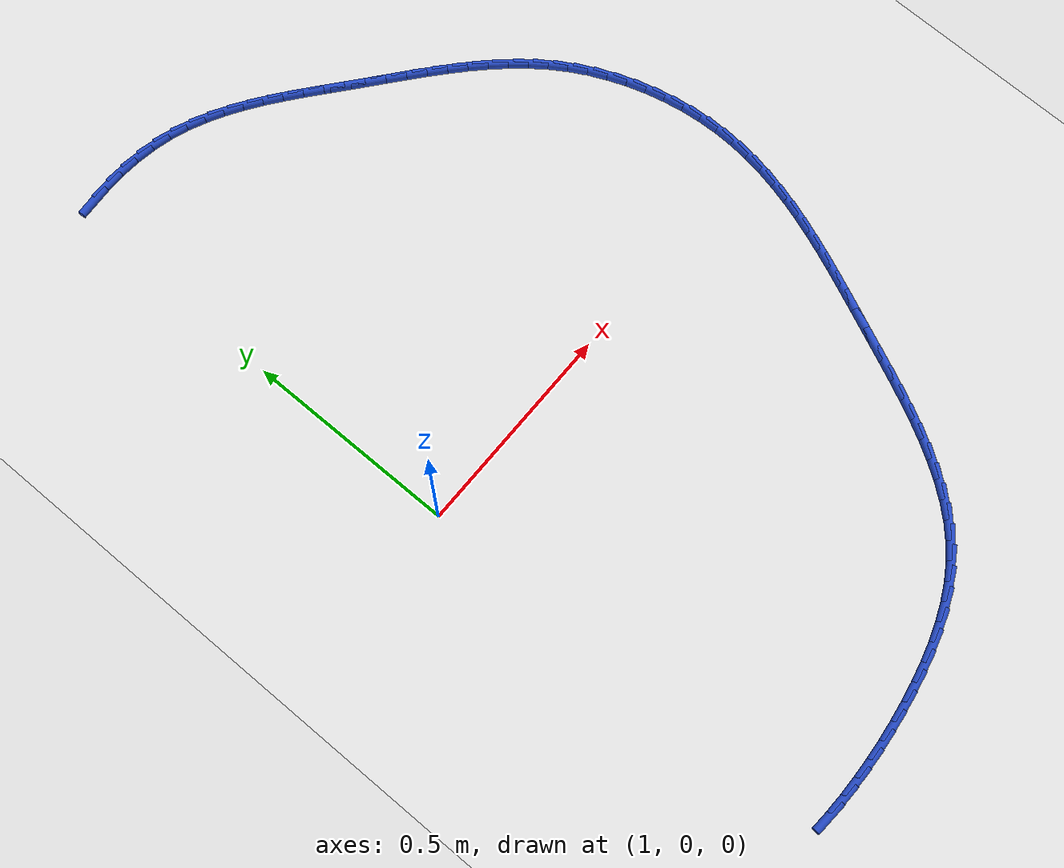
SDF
<sdf version="1.6">
 <world name="default">
  <model name="ground_plane">
   <static>1</static>
   <link name="link">
    <collision name="collision">
     <geometry><plane><normal>0 0 1</normal><size>100 100</size></plane></geometry>
     <surface><friction><ode><mu>100</mu><mu2>50</mu2></ode></friction></surface>
    </collision>
    <visual name="visual">
     <cast_shadows>0</cast_shadows>
     <geometry><plane><normal>0 0 1</normal><size>100 100</size></plane></geometry>
     <material>
      <script><uri>file://media/materials/scripts/gazebo.material</uri><name>Gazebo/WhiteGlow</name></script>
     </material>
    </visual>
   </link>
  </model>
  <model name="line">
   <link name="link_35">
    <pose>1.0471756109382253 1.0462432174974072 0.01 0 1.57 0.0472730541252099</pose>
    <collision name="collision">
     <geometry><cylinder><radius>0.01</radius><length>0.08</length></cylinder></geometry>
    </collision>
    <visual name="visual">
     <material>
      <script><name>Gazebo/Blue</name><uri>file://media/materials/scripts/gazebo.material</uri></script>
     </material>
     <geometry><cylinder><radius>0.01</radius><length>0.08</length></cylinder></geometry>
    </visual>
   </link>
   <link name="link_36">
    <pose>1.0937049745823109 1.048444442590838 0.01 0 1.57 -0.018443642220635454</pose>
    <collision name="collision">
     <geometry><cylinder><radius>0.01</radius><length>0.08</length></cylinder></geometry>
    </collision>
    <visual name="visual">
     <material>
      <script><name>Gazebo/Blue</name><uri>file://media/materials/scripts/gazebo.material</uri></script>
     </material>
     <geometry><cylinder><radius>0.01</radius><length>0.08</length></cylinder></geometry>
    </visual>
   </link>
   <link name="link_37">
    <pose>1.1398210970305143 1.0475937968714792 0.01 0 1.57 -0.09071738016088018</pose>
    <collision name="collision">
     <geometry><cylinder><radius>0.01</radius><length>0.08</length></cylinder></geometry>
    </collision>
    <visual name="visual">
     <material>
      <script><name>Gazebo/Blue</name><uri>file://media/materials/scripts/gazebo.material</uri></script>
     </material>
     <geometry><cylinder><radius>0.01</radius><length>0.08</length></cylinder></geometry>
    </visual>
   </link>
   <link name="link_38">
    <pose>1.185256405053529 1.0434606805112954 0.01 0 1.57 -0.17021186831532467</pose>
    <collision name="collision">
     <geometry><cylinder><radius>0.01</radius><length>0.08</length></cylinder></geometry>
    </collision>
    <visual name="visual">
     <material>
      <script><name>Gazebo/Blue</name><uri>file://media/materials/scripts/gazebo.material</uri></script>
     </material>
     <geometry><cylinder><radius>0.01</radius><length>0.08</length></cylinder></geometry>
    </visual>
   </link>
   <link name="link_39">
    <pose>1.2297433254220531 1.0358144936822513 0.01 0 1.57 -0.25738226622226457</pose>
    <collision name="collision">
     <geometry><cylinder><radius>0.01</radius><length>0.08</length></cylinder></geometry>
    </collision>
    <visual name="visual">
     <material>
      <script><name>Gazebo/Blue</name><uri>file://media/materials/scripts/gazebo.material</uri></script>
     </material>
     <geometry><cylinder><radius>0.01</radius><length>0.08</length></cylinder></geometry>
    </visual>
   </link>
   <link name="link_40">
    <pose>1.2730143138525405 1.0244246823964231 0.01 0 1.57 -0.3486361929021818</pose>
    <collision name="collision">
     <geometry><cylinder><radius>0.01</radius><length>0.08</length></cylinder></geometry>
    </collision>
    <visual name="visual">
     <material>
      <script><name>Gazebo/Blue</name><uri>file://media/materials/scripts/gazebo.material</uri></script>
     </material>
     <geometry><cylinder><radius>0.01</radius><length>0.08</length></cylinder></geometry>
    </visual>
   </link>
   <link name="link_41">
    <pose>1.3148916546373968 1.0092029501883182 0.01 0 1.57 -0.431375019111803</pose>
    <collision name="collision">
     <geometry><cylinder><radius>0.01</radius><length>0.08</length></cylinder></geometry>
    </collision>
    <visual name="visual">
     <material>
      <script><name>Gazebo/Blue</name><uri>file://media/materials/scripts/gazebo.material</uri></script>
     </material>
     <geometry><cylinder><radius>0.01</radius><length>0.08</length></cylinder></geometry>
    </visual>
   </link>
   <link name="link_42">
    <pose>1.3554861237072704 0.990517871975126 0.01 0 1.57 -0.5023417541619757</pose>
    <collision name="collision">
     <geometry><cylinder><radius>0.01</radius><length>0.08</length></cylinder></geometry>
    </collision>
    <visual name="visual">
     <material>
      <script><name>Gazebo/Blue</name><uri>file://media/materials/scripts/gazebo.material</uri></script>
     </material>
     <geometry><cylinder><radius>0.01</radius><length>0.08</length></cylinder></geometry>
    </visual>
   </link>
   <link name="link_43">
    <pose>1.3949662960409819 0.9688295564571869 0.01 0 1.57 -0.5613454890477821</pose>
    <collision name="collision">
     <geometry><cylinder><radius>0.01</radius><length>0.08</length></cylinder></geometry>
    </collision>
    <visual name="visual">
     <material>
      <script><name>Gazebo/Blue</name><uri>file://media/materials/scripts/gazebo.material</uri></script>
     </material>
     <geometry><cylinder><radius>0.01</radius><length>0.08</length></cylinder></geometry>
    </visual>
   </link>
   <link name="link_44">
    <pose>1.4335007466173528 0.9445981123348415 0.01 0 1.57 -0.6086673356558895</pose>
    <collision name="collision">
     <geometry><cylinder><radius>0.01</radius><length>0.08</length></cylinder></geometry>
    </collision>
    <visual name="visual">
     <material>
      <script><name>Gazebo/Blue</name><uri>file://media/materials/scripts/gazebo.material</uri></script>
     </material>
     <geometry><cylinder><radius>0.01</radius><length>0.08</length></cylinder></geometry>
    </visual>
   </link>
   <link name="link_45">
    <pose>1.4712580504152033 0.9182836483084309 0.01 0 1.57 -0.6448061670911457</pose>
    <collision name="collision">
     <geometry><cylinder><radius>0.01</radius><length>0.08</length></cylinder></geometry>
    </collision>
    <visual name="visual">
     <material>
      <script><name>Gazebo/Blue</name><uri>file://media/materials/scripts/gazebo.material</uri></script>
     </material>
     <geometry><cylinder><radius>0.01</radius><length>0.08</length></cylinder></geometry>
    </visual>
   </link>
   <link name="link_46">
    <pose>1.5084067824133554 0.8903462730782957 0.01 0 1.57 -0.6702933069164778</pose>
    <collision name="collision">
     <geometry><cylinder><radius>0.01</radius><length>0.08</length></cylinder></geometry>
    </collision>
    <visual name="visual">
     <material>
      <script><name>Gazebo/Blue</name><uri>file://media/materials/scripts/gazebo.material</uri></script>
     </material>
     <geometry><cylinder><radius>0.01</radius><length>0.08</length></cylinder></geometry>
    </visual>
   </link>
   <link name="link_47">
    <pose>1.5451155175906277 0.8612460953447763 0.01 0 1.57 -0.6855737150019687</pose>
    <collision name="collision">
     <geometry><cylinder><radius>0.01</radius><length>0.08</length></cylinder></geometry>
    </collision>
    <visual name="visual">
     <material>
      <script><name>Gazebo/Blue</name><uri>file://media/materials/scripts/gazebo.material</uri></script>
     </material>
     <geometry><cylinder><radius>0.01</radius><length>0.08</length></cylinder></geometry>
    </visual>
   </link>
   <link name="link_48">
    <pose>1.5815528309258429 0.8314432238082134 0.01 0 1.57 -0.6909374716187453</pose>
    <collision name="collision">
     <geometry><cylinder><radius>0.01</radius><length>0.08</length></cylinder></geometry>
    </collision>
    <visual name="visual">
     <material>
      <script><name>Gazebo/Blue</name><uri>file://media/materials/scripts/gazebo.material</uri></script>
     </material>
     <geometry><cylinder><radius>0.01</radius><length>0.08</length></cylinder></geometry>
    </visual>
   </link>
   <link name="link_49">
    <pose>1.617887297397821 0.8013977671689481 0.01 0 1.57 -0.6870441762420141</pose>
    <collision name="collision">
     <geometry><cylinder><radius>0.01</radius><length>0.08</length></cylinder></geometry>
    </collision>
    <visual name="visual">
     <material>
      <script><name>Gazebo/Blue</name><uri>file://media/materials/scripts/gazebo.material</uri></script>
     </material>
     <geometry><cylinder><radius>0.01</radius><length>0.08</length></cylinder></geometry>
    </visual>
   </link>
   <link name="link_50">
    <pose>1.654273696653284 0.7715471324895404 0.01 0 1.57 -0.6830043097853576</pose>
    <collision name="collision">
     <geometry><cylinder><radius>0.01</radius><length>0.08</length></cylinder></geometry>
    </collision>
    <visual name="visual">
     <material>
      <script><name>Gazebo/Blue</name><uri>file://media/materials/scripts/gazebo.material</uri></script>
     </material>
     <geometry><cylinder><radius>0.01</radius><length>0.08</length></cylinder></geometry>
    </visual>
   </link>
   <link name="link_51">
    <pose>1.6906410064363233 0.741957146578663 0.01 0 1.57 -0.6863307857866872</pose>
    <collision name="collision">
     <geometry><cylinder><radius>0.01</radius><length>0.08</length></cylinder></geometry>
    </collision>
    <visual name="visual">
     <material>
      <script><name>Gazebo/Blue</name><uri>file://media/materials/scripts/gazebo.material</uri></script>
     </material>
     <geometry><cylinder><radius>0.01</radius><length>0.08</length></cylinder></geometry>
    </visual>
   </link>
   <link name="link_52">
    <pose>1.7267339023714163 0.7123903481521966 0.01 0 1.57 -0.6973625935732917</pose>
    <collision name="collision">
     <geometry><cylinder><radius>0.01</radius><length>0.08</length></cylinder></geometry>
    </collision>
    <visual name="visual">
     <material>
      <script><name>Gazebo/Blue</name><uri>file://media/materials/scripts/gazebo.material</uri></script>
     </material>
     <geometry><cylinder><radius>0.01</radius><length>0.08</length></cylinder></geometry>
    </visual>
   </link>
   <link name="link_53">
    <pose>1.7622916721609385 0.6826004095460714 0.01 0 1.57 -0.7162616468009146</pose>
    <collision name="collision">
     <geometry><cylinder><radius>0.01</radius><length>0.08</length></cylinder></geometry>
    </collision>
    <visual name="visual">
     <material>
      <script><name>Gazebo/Blue</name><uri>file://media/materials/scripts/gazebo.material</uri></script>
     </material>
     <geometry><cylinder><radius>0.01</radius><length>0.08</length></cylinder></geometry>
    </visual>
   </link>
   <link name="link_54">
    <pose>1.797053603507267 0.6523410030962175 0.01 0 1.57 -0.7432130311848203</pose>
    <collision name="collision">
     <geometry><cylinder><radius>0.01</radius><length>0.08</length></cylinder></geometry>
    </collision>
    <visual name="visual">
     <material>
      <script><name>Gazebo/Blue</name><uri>file://media/materials/scripts/gazebo.material</uri></script>
     </material>
     <geometry><cylinder><radius>0.01</radius><length>0.08</length></cylinder></geometry>
    </visual>
   </link>
   <link name="link_55">
    <pose>1.8307589841127778 0.6213658011385641 0.01 0 1.57 -0.7783902822373173</pose>
    <collision name="collision">
     <geometry><cylinder><radius>0.01</radius><length>0.08</length></cylinder></geometry>
    </collision>
    <visual name="visual">
     <material>
      <script><name>Gazebo/Blue</name><uri>file://media/materials/scripts/gazebo.material</uri></script>
     </material>
     <geometry><cylinder><radius>0.01</radius><length>0.08</length></cylinder></geometry>
    </visual>
   </link>
   <link name="link_56">
    <pose>1.8631471016798473 0.5894284760090414 0.01 0 1.57 -0.8219013723221209</pose>
    <collision name="collision">
     <geometry><cylinder><radius>0.01</radius><length>0.08</length></cylinder></geometry>
    </collision>
    <visual name="visual">
     <material>
      <script><name>Gazebo/Blue</name><uri>file://media/materials/scripts/gazebo.material</uri></script>
     </material>
     <geometry><cylinder><radius>0.01</radius><length>0.08</length></cylinder></geometry>
    </visual>
   </link>
   <link name="link_57">
    <pose>1.8939572439108514 0.5562827000435787 0.01 0 1.57 -0.8737146574781458</pose>
    <collision name="collision">
     <geometry><cylinder><radius>0.01</radius><length>0.08</length></cylinder></geometry>
    </collision>
    <visual name="visual">
     <material>
      <script><name>Gazebo/Blue</name><uri>file://media/materials/scripts/gazebo.material</uri></script>
     </material>
     <geometry><cylinder><radius>0.01</radius><length>0.08</length></cylinder></geometry>
    </visual>
   </link>
   <link name="link_58">
    <pose>1.9229286985081653 0.5216821455781061 0.01 0 1.57 -0.93356891842563</pose>
    <collision name="collision">
     <geometry><cylinder><radius>0.01</radius><length>0.08</length></cylinder></geometry>
    </collision>
    <visual name="visual">
     <material>
      <script><name>Gazebo/Blue</name><uri>file://media/materials/scripts/gazebo.material</uri></script>
     </material>
     <geometry><cylinder><radius>0.01</radius><length>0.08</length></cylinder></geometry>
    </visual>
   </link>
   <link name="link_59">
    <pose>1.9498007531741668 0.48538048494855296 0.01 0 1.57 -1.0008645993232215</pose>
    <collision name="collision">
     <geometry><cylinder><radius>0.01</radius><length>0.08</length></cylinder></geometry>
    </collision>
    <visual name="visual">
     <material>
      <script><name>Gazebo/Blue</name><uri>file://media/materials/scripts/gazebo.material</uri></script>
     </material>
     <geometry><cylinder><radius>0.01</radius><length>0.08</length></cylinder></geometry>
    </visual>
   </link>
   <link name="link_60">
    <pose>1.9743129762506522 0.44713226359350366 0.01 0 1.57 -1.0718996389974287</pose>
    <collision name="collision">
     <geometry><cylinder><radius>0.01</radius><length>0.08</length></cylinder></geometry>
    </collision>
    <visual name="visual">
     <material>
      <script><name>Gazebo/Blue</name><uri>file://media/materials/scripts/gazebo.material</uri></script>
     </material>
     <geometry><cylinder><radius>0.01</radius><length>0.08</length></cylinder></geometry>
    </visual>
   </link>
   <link name="link_61">
    <pose>1.9962578987159565 0.4068568000195855 0.01 0 1.57 -1.1405684976423738</pose>
    <collision name="collision">
     <geometry><cylinder><radius>0.01</radius><length>0.08</length></cylinder></geometry>
    </collision>
    <visual name="visual">
     <material>
      <script><name>Gazebo/Blue</name><uri>file://media/materials/scripts/gazebo.material</uri></script>
     </material>
     <geometry><cylinder><radius>0.01</radius><length>0.08</length></cylinder></geometry>
    </visual>
   </link>
   <link name="link_62">
    <pose>2.0155431605134826 0.36483153042874117 0.01 0 1.57 -1.2069031095545313</pose>
    <collision name="collision">
     <geometry><cylinder><radius>0.01</radius><length>0.08</length></cylinder></geometry>
    </collision>
    <visual name="visual">
     <material>
      <script><name>Gazebo/Blue</name><uri>file://media/materials/scripts/gazebo.material</uri></script>
     </material>
     <geometry><cylinder><radius>0.01</radius><length>0.08</length></cylinder></geometry>
    </visual>
   </link>
   <link name="link_63">
    <pose>2.0320915134600224 0.32138090586025686 0.01 0 1.57 -1.2717636793128944</pose>
    <collision name="collision">
     <geometry><cylinder><radius>0.01</radius><length>0.08</length></cylinder></geometry>
    </collision>
    <visual name="visual">
     <material>
      <script><name>Gazebo/Blue</name><uri>file://media/materials/scripts/gazebo.material</uri></script>
     </material>
     <geometry><cylinder><radius>0.01</radius><length>0.08</length></cylinder></geometry>
    </visual>
   </link>
   <link name="link_64">
    <pose>2.045825709372368 0.2768293773534201 0.01 0 1.57 -1.3360008692846639</pose>
    <collision name="collision">
     <geometry><cylinder><radius>0.01</radius><length>0.08</length></cylinder></geometry>
    </collision>
    <visual name="visual">
     <material>
      <script><name>Gazebo/Blue</name><uri>file://media/materials/scripts/gazebo.material</uri></script>
     </material>
     <geometry><cylinder><radius>0.01</radius><length>0.08</length></cylinder></geometry>
    </visual>
   </link>
   <link name="link_65">
    <pose>2.056668500067312 0.23150139594751754 0.01 0 1.57 -1.400463411373081</pose>
    <collision name="collision">
     <geometry><cylinder><radius>0.01</radius><length>0.08</length></cylinder></geometry>
    </collision>
    <visual name="visual">
     <material>
      <script><name>Gazebo/Blue</name><uri>file://media/materials/scripts/gazebo.material</uri></script>
     </material>
     <geometry><cylinder><radius>0.01</radius><length>0.08</length></cylinder></geometry>
    </visual>
   </link>
   <link name="link_66">
    <pose>2.064542637361646 0.18572141268183545 0.01 0 1.57 -1.4660085021436622</pose>
    <collision name="collision">
     <geometry><cylinder><radius>0.01</radius><length>0.08</length></cylinder></geometry>
    </collision>
    <visual name="visual">
     <material>
      <script><name>Gazebo/Blue</name><uri>file://media/materials/scripts/gazebo.material</uri></script>
     </material>
     <geometry><cylinder><radius>0.01</radius><length>0.08</length></cylinder></geometry>
    </visual>
   </link>
   <link name="link_67">
    <pose>2.0693708730721627 0.1398138785956615 0.01 0 1.57 -1.5335118783204629</pose>
    <collision name="collision">
     <geometry><cylinder><radius>0.01</radius><length>0.08</length></cylinder></geometry>
    </collision>
    <visual name="visual">
     <material>
      <script><name>Gazebo/Blue</name><uri>file://media/materials/scripts/gazebo.material</uri></script>
     </material>
     <geometry><cylinder><radius>0.01</radius><length>0.08</length></cylinder></geometry>
    </visual>
   </link>
   <link name="link_68">
    <pose>2.0710759590156536 0.09410324472828174 0.01 0 1.57 1.5384218881127307</pose>
    <collision name="collision">
     <geometry><cylinder><radius>0.01</radius><length>0.08</length></cylinder></geometry>
    </collision>
    <visual name="visual">
     <material>
      <script><name>Gazebo/Blue</name><uri>file://media/materials/scripts/gazebo.material</uri></script>
     </material>
     <geometry><cylinder><radius>0.01</radius><length>0.08</length></cylinder></geometry>
    </visual>
   </link>
   <link name="link_69">
    <pose>2.0696113340067956 0.048878884416507805 0.01 0 1.57 1.471347084197816</pose>
    <collision name="collision">
     <geometry><cylinder><radius>0.01</radius><length>0.08</length></cylinder></geometry>
    </collision>
    <visual name="visual">
     <material>
      <script><name>Gazebo/Blue</name><uri>file://media/materials/scripts/gazebo.material</uri></script>
     </material>
     <geometry><cylinder><radius>0.01</radius><length>0.08</length></cylinder></geometry>
    </visual>
   </link>
   <link name="link_70">
    <pose>2.065151140202597 0.004177889356365089 0.01 0 1.57 1.4098308644106228</pose>
    <collision name="collision">
     <geometry><cylinder><radius>0.01</radius><length>0.08</length></cylinder></geometry>
    </collision>
    <visual name="visual">
     <material>
      <script><name>Gazebo/Blue</name><uri>file://media/materials/scripts/gazebo.material</uri></script>
     </material>
     <geometry><cylinder><radius>0.01</radius><length>0.08</length></cylinder></geometry>
    </visual>
   </link>
   <link name="link_71">
    <pose>2.0579661048418574 -0.040073053259532934 0.01 0 1.57 1.3545435582672212</pose>
    <collision name="collision">
     <geometry><cylinder><radius>0.01</radius><length>0.08</length></cylinder></geometry>
    </collision>
    <visual name="visual">
     <material>
      <script><name>Gazebo/Blue</name><uri>file://media/materials/scripts/gazebo.material</uri></script>
     </material>
     <geometry><cylinder><radius>0.01</radius><length>0.08</length></cylinder></geometry>
    </visual>
   </link>
   <link name="link_72">
    <pose>2.048327362897103 -0.08394772231095593 0.01 0 1.57 1.305869315369488</pose>
    <collision name="collision">
     <geometry><cylinder><radius>0.01</radius><length>0.08</length></cylinder></geometry>
    </collision>
    <visual name="visual">
     <material>
      <script><name>Gazebo/Blue</name><uri>file://media/materials/scripts/gazebo.material</uri></script>
     </material>
     <geometry><cylinder><radius>0.01</radius><length>0.08</length></cylinder></geometry>
    </visual>
   </link>
   <link name="link_73">
    <pose>2.0365060493408587 -0.12751989667767377 0.01 0 1.57 1.2639664884467154</pose>
    <collision name="collision">
     <geometry><cylinder><radius>0.01</radius><length>0.08</length></cylinder></geometry>
    </collision>
    <visual name="visual">
     <material>
      <script><name>Gazebo/Blue</name><uri>file://media/materials/scripts/gazebo.material</uri></script>
     </material>
     <geometry><cylinder><radius>0.01</radius><length>0.08</length></cylinder></geometry>
    </visual>
   </link>
   <link name="link_74">
    <pose>2.0227732991456495 -0.17086335523945428 0.01 0 1.57 1.228828698968601</pose>
    <collision name="collision">
     <geometry><cylinder><radius>0.01</radius><length>0.08</length></cylinder></geometry>
    </collision>
    <visual name="visual">
     <material>
      <script><name>Gazebo/Blue</name><uri>file://media/materials/scripts/gazebo.material</uri></script>
     </material>
     <geometry><cylinder><radius>0.01</radius><length>0.08</length></cylinder></geometry>
    </visual>
   </link>
   <link name="link_75">
    <pose>2.0074002472839996 -0.21405187687606764 0.01 0 1.57 1.2003435093777792</pose>
    <collision name="collision">
     <geometry><cylinder><radius>0.01</radius><length>0.08</length></cylinder></geometry>
    </collision>
    <visual name="visual">
     <material>
      <script><name>Gazebo/Blue</name><uri>file://media/materials/scripts/gazebo.material</uri></script>
     </material>
     <geometry><cylinder><radius>0.01</radius><length>0.08</length></cylinder></geometry>
    </visual>
   </link>
   <link name="link_76">
    <pose>1.9906580287284346 -0.2571592404672829 0.01 0 1.57 1.1783418062681639</pose>
    <collision name="collision">
     <geometry><cylinder><radius>0.01</radius><length>0.08</length></cylinder></geometry>
    </collision>
    <visual name="visual">
     <material>
      <script><name>Gazebo/Blue</name><uri>file://media/materials/scripts/gazebo.material</uri></script>
     </material>
     <geometry><cylinder><radius>0.01</radius><length>0.08</length></cylinder></geometry>
    </visual>
   </link>
   <link name="link_77">
    <pose>1.9728177784514789 -0.3002592248928695 0.01 0 1.57 1.1626354636979177</pose>
    <collision name="collision">
     <geometry><cylinder><radius>0.01</radius><length>0.08</length></cylinder></geometry>
    </collision>
    <visual name="visual">
     <material>
      <script><name>Gazebo/Blue</name><uri>file://media/materials/scripts/gazebo.material</uri></script>
     </material>
     <geometry><cylinder><radius>0.01</radius><length>0.08</length></cylinder></geometry>
    </visual>
   </link>
   <link name="link_78">
    <pose>1.9541506314256565 -0.3434256090325971 0.01 0 1.57 1.1530435955629084</pose>
    <collision name="collision">
     <geometry><cylinder><radius>0.01</radius><length>0.08</length></cylinder></geometry>
    </collision>
    <visual name="visual">
     <material>
      <script><name>Gazebo/Blue</name><uri>file://media/materials/scripts/gazebo.material</uri></script>
     </material>
     <geometry><cylinder><radius>0.01</radius><length>0.08</length></cylinder></geometry>
    </visual>
   </link>
   <link name="link_79">
    <pose>1.934927722623494 -0.3867321717662339 0.01 0 1.57 1.1494089404143863</pose>
    <collision name="collision">
     <geometry><cylinder><radius>0.01</radius><length>0.08</length></cylinder></geometry>
    </collision>
    <visual name="visual">
     <material>
      <script><name>Gazebo/Blue</name><uri>file://media/materials/scripts/gazebo.material</uri></script>
     </material>
     <geometry><cylinder><radius>0.01</radius><length>0.08</length></cylinder></geometry>
    </visual>
   </link>
   <link name="link_80">
    <pose>1.9154201870175156 -0.4302526919735499 0.01 0 1.57 1.1509368477353699</pose>
    <collision name="collision">
     <geometry><cylinder><radius>0.01</radius><length>0.08</length></cylinder></geometry>
    </collision>
    <visual name="visual">
     <material>
      <script><name>Gazebo/Blue</name><uri>file://media/materials/scripts/gazebo.material</uri></script>
     </material>
     <geometry><cylinder><radius>0.01</radius><length>0.08</length></cylinder></geometry>
    </visual>
   </link>
   <link name="link_81">
    <pose>1.895872885330871 -0.4740410566622712 0.01 0 1.57 1.1497684542478797</pose>
    <collision name="collision">
     <geometry><cylinder><radius>0.01</radius><length>0.08</length></cylinder></geometry>
    </collision>
    <visual name="visual">
     <material>
      <script><name>Gazebo/Blue</name><uri>file://media/materials/scripts/gazebo.material</uri></script>
     </material>
     <geometry><cylinder><radius>0.01</radius><length>0.08</length></cylinder></geometry>
    </visual>
   </link>
   <link name="link_82">
    <pose>1.8762240696948929 -0.5179190237014911 0.01 0 1.57 1.1408603704991176</pose>
    <collision name="collision">
     <geometry><cylinder><radius>0.01</radius><length>0.08</length></cylinder></geometry>
    </collision>
    <visual name="visual">
     <material>
      <script><name>Gazebo/Blue</name><uri>file://media/materials/scripts/gazebo.material</uri></script>
     </material>
     <geometry><cylinder><radius>0.01</radius><length>0.08</length></cylinder></geometry>
    </visual>
   </link>
   <link name="link_83">
    <pose>1.8562136230525506 -0.5615581683820703 0.01 0 1.57 1.1239894178460679</pose>
    <collision name="collision">
     <geometry><cylinder><radius>0.01</radius><length>0.08</length></cylinder></geometry>
    </collision>
    <visual name="visual">
     <material>
      <script><name>Gazebo/Blue</name><uri>file://media/materials/scripts/gazebo.material</uri></script>
     </material>
     <geometry><cylinder><radius>0.01</radius><length>0.08</length></cylinder></geometry>
    </visual>
   </link>
   <link name="link_84">
    <pose>1.8355780970699551 -0.6046275439310816 0.01 0 1.57 1.0988413681578615</pose>
    <collision name="collision">
     <geometry><cylinder><radius>0.01</radius><length>0.08</length></cylinder></geometry>
    </collision>
    <visual name="visual">
     <material>
      <script><name>Gazebo/Blue</name><uri>file://media/materials/scripts/gazebo.material</uri></script>
     </material>
     <geometry><cylinder><radius>0.01</radius><length>0.08</length></cylinder></geometry>
    </visual>
   </link>
   <link name="link_85">
    <pose>1.8140540434132193 -0.6467962035755973 0.01 0 1.57 1.0649446077537825</pose>
    <collision name="collision">
     <geometry><cylinder><radius>0.01</radius><length>0.08</length></cylinder></geometry>
    </collision>
    <visual name="visual">
     <material>
      <script><name>Gazebo/Blue</name><uri>file://media/materials/scripts/gazebo.material</uri></script>
     </material>
     <geometry><cylinder><radius>0.01</radius><length>0.08</length></cylinder></geometry>
    </visual>
   </link>
   <link name="link_86">
    <pose>1.7913780137484558 -0.6877332005426897 0.01 0 1.57 1.0217047809691011</pose>
    <collision name="collision">
     <geometry><cylinder><radius>0.01</radius><length>0.08</length></cylinder></geometry>
    </collision>
    <visual name="visual">
     <material>
      <script><name>Gazebo/Blue</name><uri>file://media/materials/scripts/gazebo.material</uri></script>
     </material>
     <geometry><cylinder><radius>0.01</radius><length>0.08</length></cylinder></geometry>
    </visual>
   </link>
   <link name="link_87">
    <pose>1.7672865597417764 -0.7271075880594318 0.01 0 1.57 0.9684681246316488</pose>
    <collision name="collision">
     <geometry><cylinder><radius>0.01</radius><length>0.08</length></cylinder></geometry>
    </collision>
    <visual name="visual">
     <material>
      <script><name>Gazebo/Blue</name><uri>file://media/materials/scripts/gazebo.material</uri></script>
     </material>
     <geometry><cylinder><radius>0.01</radius><length>0.08</length></cylinder></geometry>
    </visual>
   </link>
   <link name="link_88">
    <pose>1.7415162330592941 -0.7645884193528942 0.01 0 1.57 0.9046298813098269</pose>
    <collision name="collision">
     <geometry><cylinder><radius>0.01</radius><length>0.08</length></cylinder></geometry>
    </collision>
    <visual name="visual">
     <material>
      <script><name>Gazebo/Blue</name><uri>file://media/materials/scripts/gazebo.material</uri></script>
     </material>
     <geometry><cylinder><radius>0.01</radius><length>0.08</length></cylinder></geometry>
    </visual>
   </link>
   <link name="link_89">
    <pose>1.7138035853671214 -0.7998447476501503 0.01 0 1.57 0.8298035239855623</pose>
    <collision name="collision">
     <geometry><cylinder><radius>0.01</radius><length>0.08</length></cylinder></geometry>
    </collision>
    <visual name="visual">
     <material>
      <script><name>Gazebo/Blue</name><uri>file://media/materials/scripts/gazebo.material</uri></script>
     </material>
     <geometry><cylinder><radius>0.01</radius><length>0.08</length></cylinder></geometry>
    </visual>
   </link>
   <link name="link_90">
    <pose>1.6838851683313707 -0.832545626178272 0.01 0 1.57 0.7440541292253275</pose>
    <collision name="collision">
     <geometry><cylinder><radius>0.01</radius><length>0.08</length></cylinder></geometry>
    </collision>
    <visual name="visual">
     <material>
      <script><name>Gazebo/Blue</name><uri>file://media/materials/scripts/gazebo.material</uri></script>
     </material>
     <geometry><cylinder><radius>0.01</radius><length>0.08</length></cylinder></geometry>
    </visual>
   </link>
   <link name="link_91">
    <pose>1.6514975336181532 -0.8623601081643322 0.01 0 1.57 0.6481939907534021</pose>
    <collision name="collision">
     <geometry><cylinder><radius>0.01</radius><length>0.08</length></cylinder></geometry>
    </collision>
    <visual name="visual">
     <material>
      <script><name>Gazebo/Blue</name><uri>file://media/materials/scripts/gazebo.material</uri></script>
     </material>
     <geometry><cylinder><radius>0.01</radius><length>0.08</length></cylinder></geometry>
    </visual>
   </link>
   <link name="link_92">
    <pose>1.6163781570419906 -0.8889580694017299 0.01 0 1.57 0.5494819012491158</pose>
    <collision name="collision">
     <geometry><cylinder><radius>0.01</radius><length>0.08</length></cylinder></geometry>
    </collision>
    <visual name="visual">
     <material>
      <script><name>Gazebo/Blue</name><uri>file://media/materials/scripts/gazebo.material</uri></script>
     </material>
     <geometry><cylinder><radius>0.01</radius><length>0.08</length></cylinder></geometry>
    </visual>
   </link>
   <link name="link_93">
    <pose>1.5784569944139524 -0.9121807083444334 0.01 0 1.57 0.4613987022979575</pose>
    <collision name="collision">
     <geometry><cylinder><radius>0.01</radius><length>0.08</length></cylinder></geometry>
    </collision>
    <visual name="visual">
     <material>
      <script><name>Gazebo/Blue</name><uri>file://media/materials/scripts/gazebo.material</uri></script>
     </material>
     <geometry><cylinder><radius>0.01</radius><length>0.08</length></cylinder></geometry>
    </visual>
   </link>
   <link name="link_94">
    <pose>1.5380917729149466 -0.9322499743322611 0.01 0 1.57 0.3852061418872067</pose>
    <collision name="collision">
     <geometry><cylinder><radius>0.01</radius><length>0.08</length></cylinder></geometry>
    </collision>
    <visual name="visual">
     <material>
      <script><name>Gazebo/Blue</name><uri>file://media/materials/scripts/gazebo.material</uri></script>
     </material>
     <geometry><cylinder><radius>0.01</radius><length>0.08</length></cylinder></geometry>
    </visual>
   </link>
   <link name="link_95">
    <pose>1.4956978409920414 -0.9494391042611459 0.01 0 1.57 0.3199729690121302</pose>
    <collision name="collision">
     <geometry><cylinder><radius>0.01</radius><length>0.08</length></cylinder></geometry>
    </collision>
    <visual name="visual">
     <material>
      <script><name>Gazebo/Blue</name><uri>file://media/materials/scripts/gazebo.material</uri></script>
     </material>
     <geometry><cylinder><radius>0.01</radius><length>0.08</length></cylinder></geometry>
    </visual>
   </link>
   <link name="link_96">
    <pose>1.4516905470923067 -0.9640213350270204 0.01 0 1.57 0.2646009981165499</pose>
    <collision name="collision">
     <geometry><cylinder><radius>0.01</radius><length>0.08</length></cylinder></geometry>
    </collision>
    <visual name="visual">
     <material>
      <script><name>Gazebo/Blue</name><uri>file://media/materials/scripts/gazebo.material</uri></script>
     </material>
     <geometry><cylinder><radius>0.01</radius><length>0.08</length></cylinder></geometry>
    </visual>
   </link>
   <link name="link_97">
    <pose>1.4064852396628122 -0.9762699035258188 0.01 0 1.57 0.21801806482751587</pose>
    <collision name="collision">
     <geometry><cylinder><radius>0.01</radius><length>0.08</length></cylinder></geometry>
    </collision>
    <visual name="visual">
     <material>
      <script><name>Gazebo/Blue</name><uri>file://media/materials/scripts/gazebo.material</uri></script>
     </material>
     <geometry><cylinder><radius>0.01</radius><length>0.08</length></cylinder></geometry>
    </visual>
   </link>
   <link name="link_98">
    <pose>1.360497267150626 -0.9864580466534734 0.01 0 1.57 0.17928378014593996</pose>
    <collision name="collision">
     <geometry><cylinder><radius>0.01</radius><length>0.08</length></cylinder></geometry>
    </collision>
    <visual name="visual">
     <material>
      <script><name>Gazebo/Blue</name><uri>file://media/materials/scripts/gazebo.material</uri></script>
     </material>
     <geometry><cylinder><radius>0.01</radius><length>0.08</length></cylinder></geometry>
    </visual>
   </link>
   <link name="link_99">
    <pose>1.3141419780028174 -0.9948590013059176 0.01 0 1.57 0.14651409971843896</pose>
    <collision name="collision">
     <geometry><cylinder><radius>0.01</radius><length>0.08</length></cylinder></geometry>
    </collision>
    <visual name="visual">
     <material>
      <script><name>Gazebo/Blue</name><uri>file://media/materials/scripts/gazebo.material</uri></script>
     </material>
     <geometry><cylinder><radius>0.01</radius><length>0.08</length></cylinder></geometry>
    </visual>
   </link>
   <link name="link_100">
    <pose>1.2677742208606593 -1.0017015633943505 0.01 0 1.57 0.11440669852353393</pose>
    <collision name="collision">
     <geometry><cylinder><radius>0.01</radius><length>0.08</length></cylinder></geometry>
    </collision>
    <visual name="visual">
     <material>
      <script><name>Gazebo/Blue</name><uri>file://media/materials/scripts/gazebo.material</uri></script>
     </material>
     <geometry><cylinder><radius>0.01</radius><length>0.08</length></cylinder></geometry>
    </visual>
   </link>
   <link name="link_101">
    <pose>1.2214848458838783 -1.0070206050258508 0.01 0 1.57 0.08159667444194646</pose>
    <collision name="collision">
     <geometry><cylinder><radius>0.01</radius><length>0.08</length></cylinder></geometry>
    </collision>
    <visual name="visual">
     <material>
      <script><name>Gazebo/Blue</name><uri>file://media/materials/scripts/gazebo.material</uri></script>
     </material>
     <geometry><cylinder><radius>0.01</radius><length>0.08</length></cylinder></geometry>
    </visual>
   </link>
   <link name="link_102">
    <pose>1.175292712864542 -1.0107981167686573 0.01 0 1.57 0.04810007124243815</pose>
    <collision name="collision">
     <geometry><cylinder><radius>0.01</radius><length>0.08</length></cylinder></geometry>
    </collision>
    <visual name="visual">
     <material>
      <script><name>Gazebo/Blue</name><uri>file://media/materials/scripts/gazebo.material</uri></script>
     </material>
     <geometry><cylinder><radius>0.01</radius><length>0.08</length></cylinder></geometry>
    </visual>
   </link>
   <link name="link_103">
    <pose>1.1292166799849173 -1.013016088008506 0.01 0 1.57 0.01393913073461473</pose>
    <collision name="collision">
     <geometry><cylinder><radius>0.01</radius><length>0.08</length></cylinder></geometry>
    </collision>
    <visual name="visual">
     <material>
      <script><name>Gazebo/Blue</name><uri>file://media/materials/scripts/gazebo.material</uri></script>
     </material>
     <geometry><cylinder><radius>0.01</radius><length>0.08</length></cylinder></geometry>
    </visual>
   </link>
   <link name="link_104">
    <pose>1.0832756054272688 -1.0136565081311322 0.01 0 1.57 -0.02085739876147153</pose>
    <collision name="collision">
     <geometry><cylinder><radius>0.01</radius><length>0.08</length></cylinder></geometry>
    </collision>
    <visual name="visual">
     <material>
      <script><name>Gazebo/Blue</name><uri>file://media/materials/scripts/gazebo.material</uri></script>
     </material>
     <geometry><cylinder><radius>0.01</radius><length>0.08</length></cylinder></geometry>
    </visual>
   </link>
   <link name="link_105">
    <pose>1.0374883473738645 -1.0127013665222713 0.01 0 1.57 -0.056254022626228715</pose>
    <collision name="collision">
     <geometry><cylinder><radius>0.01</radius><length>0.08</length></cylinder></geometry>
    </collision>
    <visual name="visual">
     <material>
      <script><name>Gazebo/Blue</name><uri>file://media/materials/scripts/gazebo.material</uri></script>
     </material>
     <geometry><cylinder><radius>0.01</radius><length>0.08</length></cylinder></geometry>
    </visual>
   </link>
  </model>
 </world>
</sdf>
